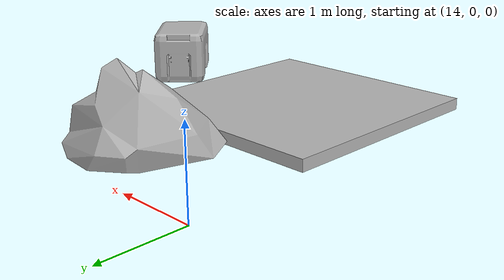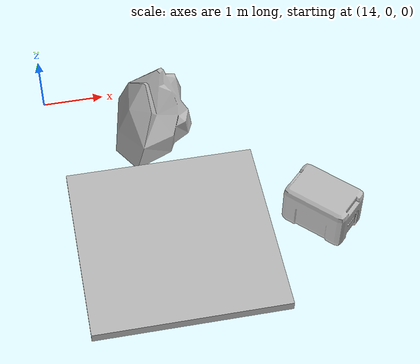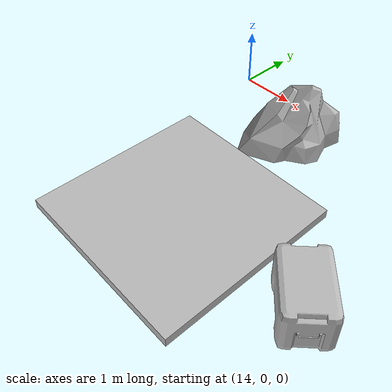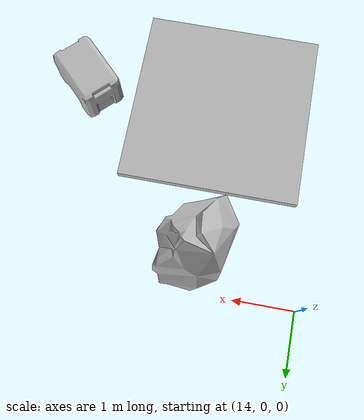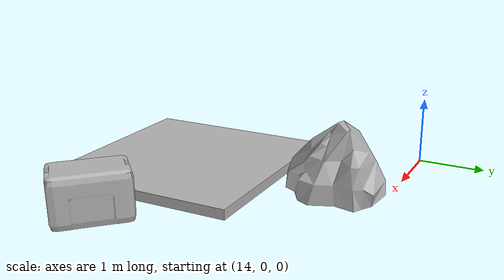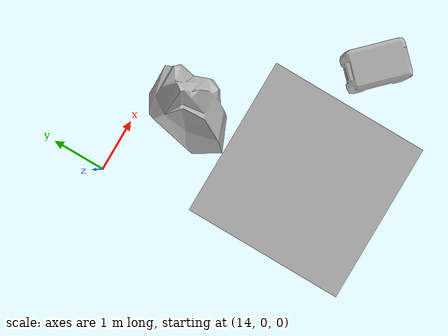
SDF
<sdf version="1.6">
 <world name="SRC_finals">
  <include>
   <name>walkway_11</name>
   <pose>15.7007565802462
      -3.231985441386418
      -0.052151
      0
      0
      3.141592653589793</pose>
   <uri>model://walkway_finish_adjacent</uri>
  </include>
  <include>
   <name>bling_12</name>
   <pose>15.7007565802462
      -0.6079854413864179
      0
      0
      0
      -4.0574162479713433e-16</pose>
   <uri>model://mars_rock_3</uri>
  </include>
  <include>
   <name>bling_13</name>
   <pose>18.0247565802462
      -3.231985441386419
      0
      0
      0
      -0.7853981633974487</pose>
   <uri>model://mars_crate_long</uri>
  </include>
 </world>
</sdf>
